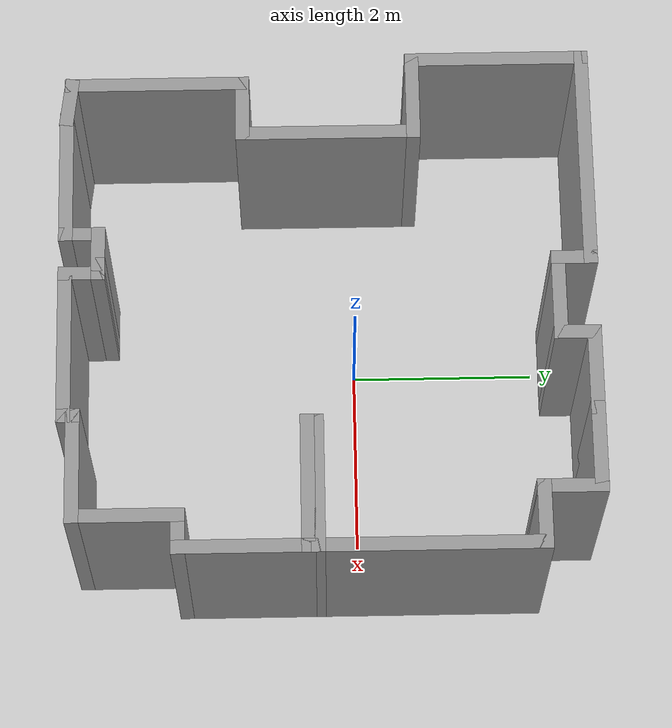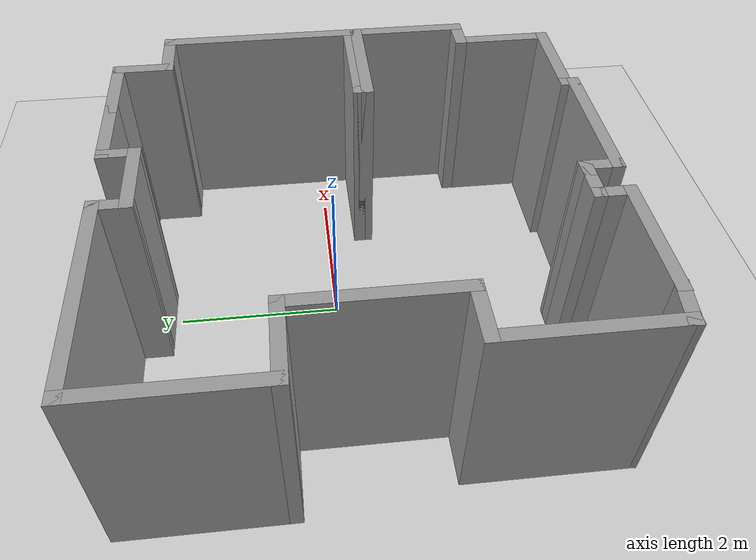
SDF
<sdf version="1.6">
 <world name="default">
  <light name="sun" type="directional">
   <pose>0 0 10 0 -0 0</pose>
   <diffuse>0.8 0.8 0.8 1</diffuse>
   <specular>0.2 0.2 0.2 1</specular>
   <attenuation>
    <range>1000</range>
    <constant>0.9</constant>
    <linear>0.01</linear>
    <quadratic>0.001</quadratic>
   </attenuation>
   <direction>-0.5 0.1 -0.9</direction>
  </light>
  <model name="ground_plane">
   <static>1</static>
   <link name="link">
    <collision name="collision">
     <geometry><plane><normal>0 0 1</normal><size>100 100</size></plane></geometry>
     <surface>
      <contact><collide_bitmask>65535</collide_bitmask></contact>
      <friction><ode><mu>100</mu><mu2>50</mu2></ode></friction>
     </surface>
    </collision>
    <visual name="visual">
     <cast_shadows>0</cast_shadows>
     <geometry><plane><normal>0 0 1</normal><size>100 100</size></plane></geometry>
     <material>
      <script><uri>file://media/materials/scripts/gazebo.material</uri><name>Gazebo/Grey</name></script>
     </material>
    </visual>
   </link>
  </model>
  <gravity>0 0 -9.8</gravity>
  <magnetic_field>6e-06 2.3e-05 -4.2e-05</magnetic_field>
  <atmosphere type="adiabatic"/>
  <physics name="default_physics" default="0" type="ode">
   <max_step_size>0.001</max_step_size>
   <real_time_factor>1</real_time_factor>
   <real_time_update_rate>1000</real_time_update_rate>
  </physics>
  <scene><ambient>0.4 0.4 0.4 1</ambient><background>0.7 0.7 0.7 1</background><shadows>1</shadows></scene>
  <spherical_coordinates>
   <surface_model>EARTH_WGS84</surface_model>
   <latitude_deg>0</latitude_deg>
   <longitude_deg>0</longitude_deg>
   <elevation>0</elevation>
   <heading_deg>0</heading_deg>
  </spherical_coordinates>
  <model name="Untitled1">
   <pose>-0.055494 -0.292318 0 0 -0 0</pose>
   <link name="Wall_51">
    <collision name="Wall_51_Collision">
     <geometry><box><size>2 0.15 2.5</size></box></geometry>
     <pose>0 0 1.25 0 -0 0</pose>
    </collision>
    <visual name="Wall_51_Visual">
     <pose>0 0 1.25 0 -0 0</pose>
     <geometry><box><size>2 0.15 2.5</size></box></geometry>
     <material>
      <script><uri>file://media/materials/scripts/gazebo.material</uri><name>Gazebo/Grey</name></script>
      <ambient>1 1 1 1</ambient>
     </material>
     <meta><layer>0</layer></meta>
    </visual>
    <pose>-2.5 -1.82064 0 0 -0 1.5708</pose>
   </link>
   <link name="Wall_52">
    <collision name="Wall_52_Collision">
     <geometry><box><size>0.75 0.15 2.5</size></box></geometry>
     <pose>0 0 1.25 0 -0 0</pose>
    </collision>
    <visual name="Wall_52_Visual">
     <pose>0 0 1.25 0 -0 0</pose>
     <geometry><box><size>0.75 0.15 2.5</size></box></geometry>
     <material>
      <script><uri>file://media/materials/scripts/gazebo.material</uri><name>Gazebo/Grey</name></script>
      <ambient>1 1 1 1</ambient>
     </material>
     <meta><layer>0</layer></meta>
    </visual>
    <pose>-2.2 -0.895638 0 0 -0 0</pose>
   </link>
   <link name="Wall_53">
    <collision name="Wall_53_Collision">
     <geometry><box><size>2 0.15 2.5</size></box></geometry>
     <pose>0 0 1.25 0 -0 0</pose>
    </collision>
    <visual name="Wall_53_Visual">
     <pose>0 0 1.25 0 -0 0</pose>
     <geometry><box><size>2 0.15 2.5</size></box></geometry>
     <material>
      <script><uri>file://media/materials/scripts/gazebo.material</uri><name>Gazebo/Grey</name></script>
      <ambient>1 1 1 1</ambient>
     </material>
     <meta><layer>0</layer></meta>
    </visual>
    <pose>-1.9 0.029362 0 0 -0 1.5708</pose>
   </link>
   <link name="Wall_54">
    <collision name="Wall_54_Collision">
     <geometry><box><size>1 0.15 2.5</size></box></geometry>
     <pose>0 0 1.25 0 -0 0</pose>
    </collision>
    <visual name="Wall_54_Visual">
     <pose>0 0 1.25 0 -0 0</pose>
     <geometry><box><size>1 0.15 2.5</size></box></geometry>
     <material>
      <script><uri>file://media/materials/scripts/gazebo.material</uri><name>Gazebo/Grey</name></script>
      <ambient>1 1 1 1</ambient>
     </material>
     <meta><layer>0</layer></meta>
    </visual>
    <pose>-2.325 0.954362 0 0 -0 3.14159</pose>
   </link>
   <link name="Wall_56">
    <collision name="Wall_56_Collision">
     <geometry><box><size>2 0.15 2.5</size></box></geometry>
     <pose>0 0 1.25 0 -0 0</pose>
    </collision>
    <visual name="Wall_56_Visual">
     <pose>0 0 1.25 0 -0 0</pose>
     <geometry><box><size>2 0.15 2.5</size></box></geometry>
     <material>
      <script><uri>file://media/materials/scripts/gazebo.material</uri><name>Gazebo/Grey</name></script>
      <ambient>1 1 1 1</ambient>
     </material>
     <meta><layer>0</layer></meta>
    </visual>
    <pose>-2.75 1.87936 0 0 -0 1.5708</pose>
   </link>
   <link name="Wall_57">
    <collision name="Wall_57_Collision">
     <geometry><box><size>2.5 0.15 2.5</size></box></geometry>
     <pose>0 0 1.25 0 -0 0</pose>
    </collision>
    <visual name="Wall_57_Visual">
     <pose>0 0 1.25 0 -0 0</pose>
     <geometry><box><size>2.5 0.15 2.5</size></box></geometry>
     <material>
      <script><uri>file://media/materials/scripts/gazebo.material</uri><name>Gazebo/Grey</name></script>
      <ambient>1 1 1 1</ambient>
     </material>
     <meta><layer>0</layer></meta>
    </visual>
    <pose>-1.575 2.80436 0 0 -0 0</pose>
   </link>
   <link name="Wall_58">
    <collision name="Wall_58_Collision">
     <geometry><box><size>0.5 0.15 2.5</size></box></geometry>
     <pose>0 0 1.25 0 -0 0</pose>
    </collision>
    <visual name="Wall_58_Visual">
     <pose>0 0 1.25 0 -0 0</pose>
     <geometry><box><size>0.5 0.15 2.5</size></box></geometry>
     <material>
      <script><uri>file://media/materials/scripts/gazebo.material</uri><name>Gazebo/Grey</name></script>
      <ambient>1 1 1 1</ambient>
     </material>
     <meta><layer>0</layer></meta>
    </visual>
    <pose>-0.4 2.62936 0 0 0 -1.5708</pose>
   </link>
   <link name="Wall_59">
    <collision name="Wall_59_Collision">
     <geometry><box><size>1 0.15 2.5</size></box></geometry>
     <pose>0 0 1.25 0 -0 0</pose>
    </collision>
    <visual name="Wall_59_Visual">
     <pose>0 0 1.25 0 -0 0</pose>
     <geometry><box><size>1 0.15 2.5</size></box></geometry>
     <material>
      <script><uri>file://media/materials/scripts/gazebo.material</uri><name>Gazebo/Grey</name></script>
      <ambient>1 1 1 1</ambient>
     </material>
     <meta><layer>0</layer></meta>
    </visual>
    <pose>0.025 2.45436 0 0 -0 0</pose>
   </link>
   <link name="Wall_60">
    <collision name="Wall_60_Collision">
     <geometry><box><size>0.5 0.15 2.5</size></box></geometry>
     <pose>0 0 1.25 0 -0 0</pose>
    </collision>
    <visual name="Wall_60_Visual">
     <pose>0 0 1.25 0 -0 0</pose>
     <geometry><box><size>0.5 0.15 2.5</size></box></geometry>
     <material>
      <script><uri>file://media/materials/scripts/gazebo.material</uri><name>Gazebo/Grey</name></script>
      <ambient>1 1 1 1</ambient>
     </material>
     <meta><layer>0</layer></meta>
    </visual>
    <pose>0.45 2.62936 0 0 -0 1.5708</pose>
   </link>
   <link name="Wall_61">
    <collision name="Wall_61_Collision">
     <geometry><box><size>1 0.15 2.5</size></box></geometry>
     <pose>0 0 1.25 0 -0 0</pose>
    </collision>
    <visual name="Wall_61_Visual">
     <pose>0 0 1.25 0 -0 0</pose>
     <geometry><box><size>1 0.15 2.5</size></box></geometry>
     <material>
      <script><uri>file://media/materials/scripts/gazebo.material</uri><name>Gazebo/Grey</name></script>
      <ambient>1 1 1 1</ambient>
     </material>
     <meta><layer>0</layer></meta>
    </visual>
    <pose>0.875 2.80436 0 0 -0 0</pose>
   </link>
   <link name="Wall_62">
    <collision name="Wall_62_Collision">
     <geometry><box><size>1 0.15 2.5</size></box></geometry>
     <pose>0 0 1.25 0 -0 0</pose>
    </collision>
    <visual name="Wall_62_Visual">
     <pose>0 0 1.25 0 -0 0</pose>
     <geometry><box><size>1 0.15 2.5</size></box></geometry>
     <material>
      <script><uri>file://media/materials/scripts/gazebo.material</uri><name>Gazebo/Grey</name></script>
      <ambient>1 1 1 1</ambient>
     </material>
     <meta><layer>0</layer></meta>
    </visual>
    <pose>1.725 2.80436 0 0 -0 0</pose>
   </link>
   <link name="Wall_63">
    <collision name="Wall_63_Collision">
     <geometry><box><size>0.75 0.15 2.5</size></box></geometry>
     <pose>0 0 1.25 0 -0 0</pose>
    </collision>
    <visual name="Wall_63_Visual">
     <pose>0 0 1.25 0 -0 0</pose>
     <geometry><box><size>0.75 0.15 2.5</size></box></geometry>
     <material>
      <script><uri>file://media/materials/scripts/gazebo.material</uri><name>Gazebo/Grey</name></script>
      <ambient>1 1 1 1</ambient>
     </material>
     <meta><layer>0</layer></meta>
    </visual>
    <pose>2.15 2.50436 0 0 0 -1.5708</pose>
   </link>
   <link name="Wall_64">
    <collision name="Wall_64_Collision">
     <geometry><box><size>0.75 0.15 2.5</size></box></geometry>
     <pose>0 0 1.25 0 -0 0</pose>
    </collision>
    <visual name="Wall_64_Visual">
     <pose>0 0 1.25 0 -0 0</pose>
     <geometry><box><size>0.75 0.15 2.5</size></box></geometry>
     <material>
      <script><uri>file://media/materials/scripts/gazebo.material</uri><name>Gazebo/Grey</name></script>
      <ambient>1 1 1 1</ambient>
     </material>
     <meta><layer>0</layer></meta>
    </visual>
    <pose>2.45 2.20436 0 0 -0 0</pose>
   </link>
   <link name="Wall_65">
    <collision name="Wall_65_Collision">
     <geometry><box><size>2.5 0.15 2.5</size></box></geometry>
     <pose>0 0 1.25 0 -0 0</pose>
    </collision>
    <visual name="Wall_65_Visual">
     <pose>0 0 1.25 0 -0 0</pose>
     <geometry><box><size>2.5 0.15 2.5</size></box></geometry>
     <material>
      <script><uri>file://media/materials/scripts/gazebo.material</uri><name>Gazebo/Grey</name></script>
      <ambient>1 1 1 1</ambient>
     </material>
     <meta><layer>0</layer></meta>
    </visual>
    <pose>2.75 1.02936 0 0 0 -1.5708</pose>
   </link>
   <link name="Wall_66">
    <collision name="Wall_66_Collision">
     <geometry><box><size>1.5 0.15 2.5</size></box></geometry>
     <pose>0 0 1.25 0 -0 0</pose>
    </collision>
    <visual name="Wall_66_Visual">
     <pose>0 0 1.25 0 -0 0</pose>
     <geometry><box><size>1.5 0.15 2.5</size></box></geometry>
     <material>
      <script><uri>file://media/materials/scripts/gazebo.material</uri><name>Gazebo/Grey</name></script>
      <ambient>1 1 1 1</ambient>
     </material>
     <meta><layer>0</layer></meta>
    </visual>
    <pose>2.075 -0.145638 0 0 -0 3.14159</pose>
   </link>
   <link name="Wall_67">
    <collision name="Wall_67_Collision">
     <geometry><box><size>0.25 0.15 2.5</size></box></geometry>
     <pose>0 0 1.25 0 -0 0</pose>
    </collision>
    <visual name="Wall_67_Visual">
     <pose>0 0 1.25 0 -0 0</pose>
     <geometry><box><size>0.25 0.15 2.5</size></box></geometry>
     <material>
      <script><uri>file://media/materials/scripts/gazebo.material</uri><name>Gazebo/Grey</name></script>
      <ambient>1 1 1 1</ambient>
     </material>
     <meta><layer>0</layer></meta>
    </visual>
    <pose>1.4 -0.195638 0 0 0 -1.5708</pose>
   </link>
   <link name="Wall_68">
    <collision name="Wall_68_Collision">
     <geometry><box><size>1.5 0.15 2.5</size></box></geometry>
     <pose>0 0 1.25 0 -0 0</pose>
    </collision>
    <visual name="Wall_68_Visual">
     <pose>0 0 1.25 0 -0 0</pose>
     <geometry><box><size>1.5 0.15 2.5</size></box></geometry>
     <material>
      <script><uri>file://media/materials/scripts/gazebo.material</uri><name>Gazebo/Grey</name></script>
      <ambient>1 1 1 1</ambient>
     </material>
     <meta><layer>0</layer></meta>
    </visual>
    <pose>2.075 -0.245638 0 0 -0 0</pose>
   </link>
   <link name="Wall_69">
    <collision name="Wall_69_Collision">
     <geometry><box><size>1.5 0.15 2.5</size></box></geometry>
     <pose>0 0 1.25 0 -0 0</pose>
    </collision>
    <visual name="Wall_69_Visual">
     <pose>0 0 1.25 0 -0 0</pose>
     <geometry><box><size>1.5 0.15 2.5</size></box></geometry>
     <material>
      <script><uri>file://media/materials/scripts/gazebo.material</uri><name>Gazebo/Grey</name></script>
      <ambient>1 1 1 1</ambient>
     </material>
     <meta><layer>0</layer></meta>
    </visual>
    <pose>2.75 -0.920638 0 0 0 -1.5708</pose>
   </link>
   <link name="Wall_70">
    <collision name="Wall_70_Collision">
     <geometry><box><size>0.5 0.15 2.5</size></box></geometry>
     <pose>0 0 1.25 0 -0 0</pose>
    </collision>
    <visual name="Wall_70_Visual">
     <pose>0 0 1.25 0 -0 0</pose>
     <geometry><box><size>0.5 0.15 2.5</size></box></geometry>
     <material>
      <script><uri>file://media/materials/scripts/gazebo.material</uri><name>Gazebo/Grey</name></script>
      <ambient>1 1 1 1</ambient>
     </material>
     <meta><layer>0</layer></meta>
    </visual>
    <pose>2.575 -1.59564 0 0 -0 3.14159</pose>
   </link>
   <link name="Wall_71">
    <collision name="Wall_71_Collision">
     <geometry><box><size>1.25 0.15 2.5</size></box></geometry>
     <pose>0 0 1.25 0 -0 0</pose>
    </collision>
    <visual name="Wall_71_Visual">
     <pose>0 0 1.25 0 -0 0</pose>
     <geometry><box><size>1.25 0.15 2.5</size></box></geometry>
     <material>
      <script><uri>file://media/materials/scripts/gazebo.material</uri><name>Gazebo/Grey</name></script>
      <ambient>1 1 1 1</ambient>
     </material>
     <meta><layer>0</layer></meta>
    </visual>
    <pose>2.4 -2.14564 0 0 0 -1.5708</pose>
   </link>
   <link name="Wall_72">
    <collision name="Wall_72_Collision">
     <geometry><box><size>1.25 0.15 2.5</size></box></geometry>
     <pose>0 0 1.25 0 -0 0</pose>
    </collision>
    <visual name="Wall_72_Visual">
     <pose>0 0 1.25 0 -0 0</pose>
     <geometry><box><size>1.25 0.15 2.5</size></box></geometry>
     <material>
      <script><uri>file://media/materials/scripts/gazebo.material</uri><name>Gazebo/Grey</name></script>
      <ambient>1 1 1 1</ambient>
     </material>
     <meta><layer>0</layer></meta>
    </visual>
    <pose>1.85 -2.69564 0 0 -0 3.14159</pose>
   </link>
   <link name="Wall_73">
    <collision name="Wall_73_Collision">
     <geometry><box><size>0.25 0.15 2.5</size></box></geometry>
     <pose>0 0 1.25 0 -0 0</pose>
    </collision>
    <visual name="Wall_73_Visual">
     <pose>0 0 1.25 0 -0 0</pose>
     <geometry><box><size>0.25 0.15 2.5</size></box></geometry>
     <material>
      <script><uri>file://media/materials/scripts/gazebo.material</uri><name>Gazebo/Grey</name></script>
      <ambient>1 1 1 1</ambient>
     </material>
     <meta><layer>0</layer></meta>
    </visual>
    <pose>1.3 -2.74564 0 0 0 -1.5708</pose>
   </link>
   <link name="Wall_74">
    <collision name="Wall_74_Collision">
     <geometry><box><size>1.75 0.15 2.5</size></box></geometry>
     <pose>0 0 1.25 0 -0 0</pose>
    </collision>
    <visual name="Wall_74_Visual">
     <pose>0 0 1.25 0 -0 0</pose>
     <geometry><box><size>1.75 0.15 2.5</size></box></geometry>
     <material>
      <script><uri>file://media/materials/scripts/gazebo.material</uri><name>Gazebo/Grey</name></script>
      <ambient>1 1 1 1</ambient>
     </material>
     <meta><layer>0</layer></meta>
    </visual>
    <pose>0.5 -2.79564 0 0 -0 3.14159</pose>
   </link>
   <link name="Wall_75">
    <collision name="Wall_75_Collision">
     <geometry><box><size>0.5 0.15 2.5</size></box></geometry>
     <pose>0 0 1.25 0 -0 0</pose>
    </collision>
    <visual name="Wall_75_Visual">
     <pose>0 0 1.25 0 -0 0</pose>
     <geometry><box><size>0.5 0.15 2.5</size></box></geometry>
     <material>
      <script><uri>file://media/materials/scripts/gazebo.material</uri><name>Gazebo/Grey</name></script>
      <ambient>1 1 1 1</ambient>
     </material>
     <meta><layer>0</layer></meta>
    </visual>
    <pose>-0.3 -2.62064 0 0 -0 1.5708</pose>
   </link>
   <link name="Wall_76">
    <collision name="Wall_76_Collision">
     <geometry><box><size>0.25 0.15 2.5</size></box></geometry>
     <pose>0 0 1.25 0 -0 0</pose>
    </collision>
    <visual name="Wall_76_Visual">
     <pose>0 0 1.25 0 -0 0</pose>
     <geometry><box><size>0.25 0.15 2.5</size></box></geometry>
     <material>
      <script><uri>file://media/materials/scripts/gazebo.material</uri><name>Gazebo/Grey</name></script>
      <ambient>1 1 1 1</ambient>
     </material>
     <meta><layer>0</layer></meta>
    </visual>
    <pose>-0.35 -2.44564 0 0 -0 3.14159</pose>
   </link>
   <link name="Wall_77">
    <collision name="Wall_77_Collision">
     <geometry><box><size>0.5 0.15 2.5</size></box></geometry>
     <pose>0 0 1.25 0 -0 0</pose>
    </collision>
    <visual name="Wall_77_Visual">
     <pose>0 0 1.25 0 -0 0</pose>
     <geometry><box><size>0.5 0.15 2.5</size></box></geometry>
     <material>
      <script><uri>file://media/materials/scripts/gazebo.material</uri><name>Gazebo/Grey</name></script>
      <ambient>1 1 1 1</ambient>
     </material>
     <meta><layer>0</layer></meta>
    </visual>
    <pose>-0.575 -2.44564 0 0 -0 3.14159</pose>
   </link>
   <link name="Wall_78">
    <collision name="Wall_78_Collision">
     <geometry><box><size>0.5 0.15 2.5</size></box></geometry>
     <pose>0 0 1.25 0 -0 0</pose>
    </collision>
    <visual name="Wall_78_Visual">
     <pose>0 0 1.25 0 -0 0</pose>
     <geometry><box><size>0.5 0.15 2.5</size></box></geometry>
     <material>
      <script><uri>file://media/materials/scripts/gazebo.material</uri><name>Gazebo/Grey</name></script>
      <ambient>1 1 1 1</ambient>
     </material>
     <meta><layer>0</layer></meta>
    </visual>
    <pose>-0.75 -2.62064 0 0 0 -1.5708</pose>
   </link>
   <link name="Wall_79">
    <collision name="Wall_79_Collision">
     <geometry><box><size>1.5 0.15 2.5</size></box></geometry>
     <pose>0 0 1.25 0 -0 0</pose>
    </collision>
    <visual name="Wall_79_Visual">
     <pose>0 0 1.25 0 -0 0</pose>
     <geometry><box><size>1.5 0.15 2.5</size></box></geometry>
     <material>
      <script><uri>file://media/materials/scripts/gazebo.material</uri><name>Gazebo/Grey</name></script>
      <ambient>1 1 1 1</ambient>
     </material>
     <meta><layer>0</layer></meta>
    </visual>
    <pose>-1.425 -2.79564 0 0 -0 3.14159</pose>
   </link>
   <link name="Wall_80">
    <collision name="Wall_80_Collision">
     <geometry><box><size>0.553113 0.15 2.5</size></box></geometry>
     <pose>0 0 1.25 0 -0 0</pose>
    </collision>
    <visual name="Wall_80_Visual">
     <pose>0 0 1.25 0 -0 0</pose>
     <geometry><box><size>0.553113 0.15 2.5</size></box></geometry>
     <material>
      <script><uri>file://media/materials/scripts/gazebo.material</uri><name>Gazebo/Grey</name></script>
      <ambient>1 1 1 1</ambient>
     </material>
     <meta><layer>0</layer></meta>
    </visual>
    <pose>-2.3 -2.77064 0 0 -0 3.01724</pose>
   </link>
   <static>1</static>
  </model>
 </world>
</sdf>
